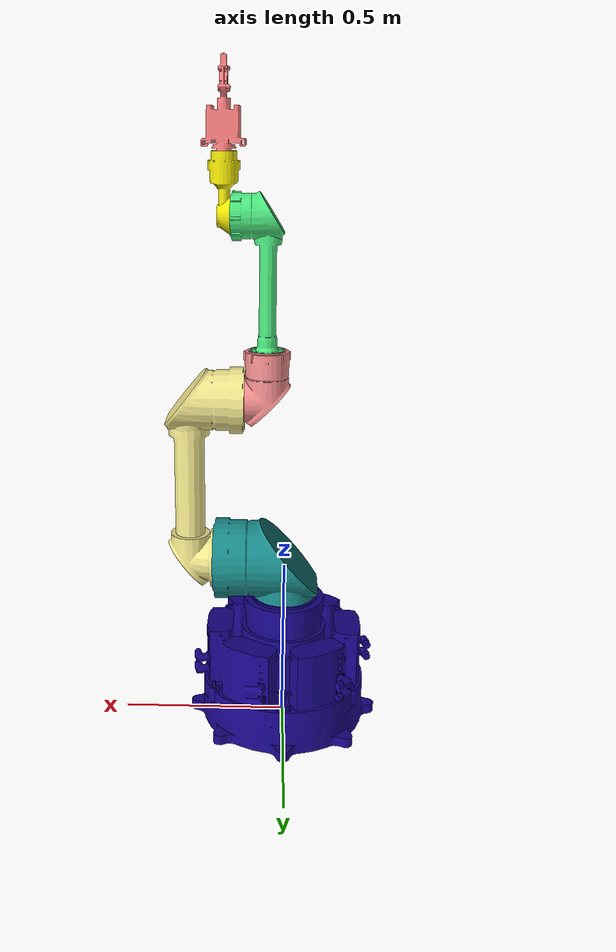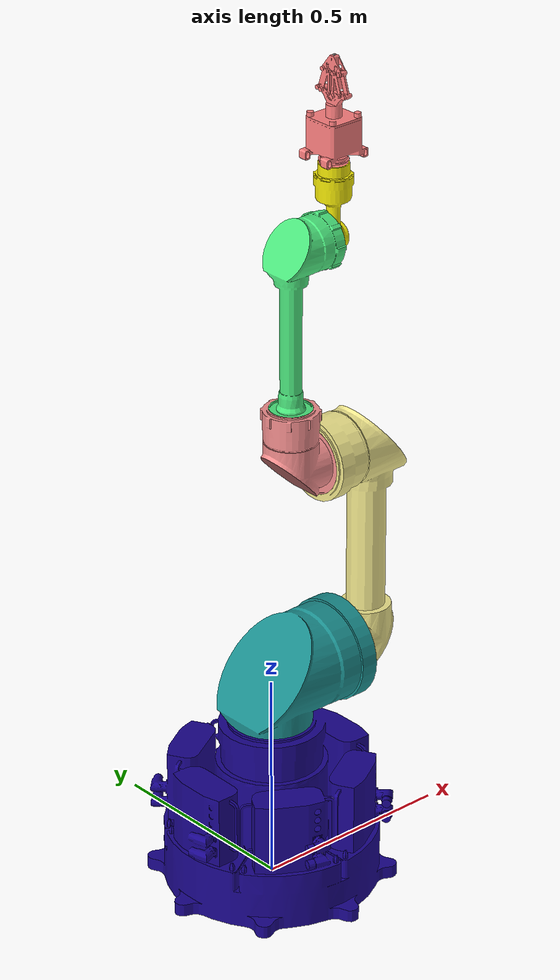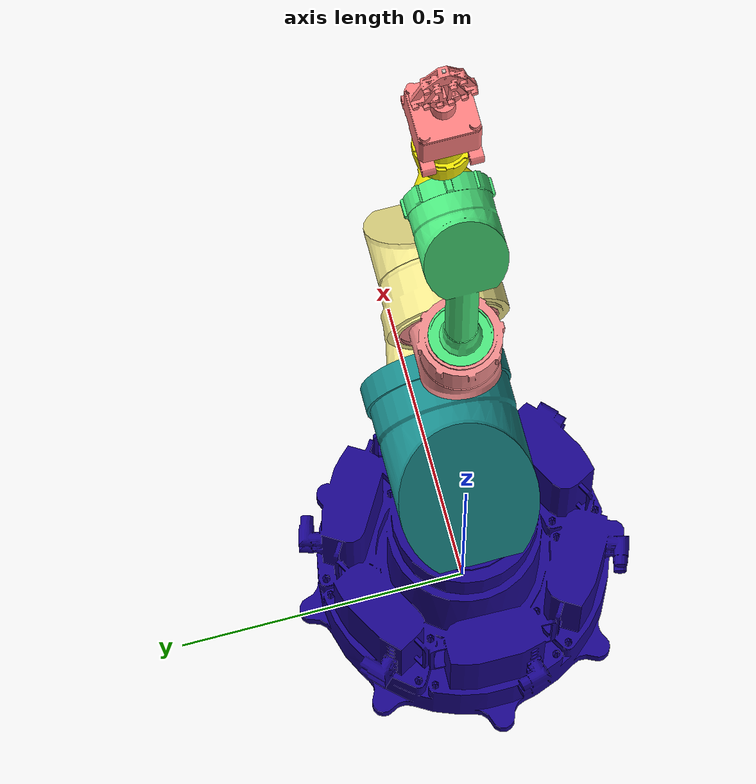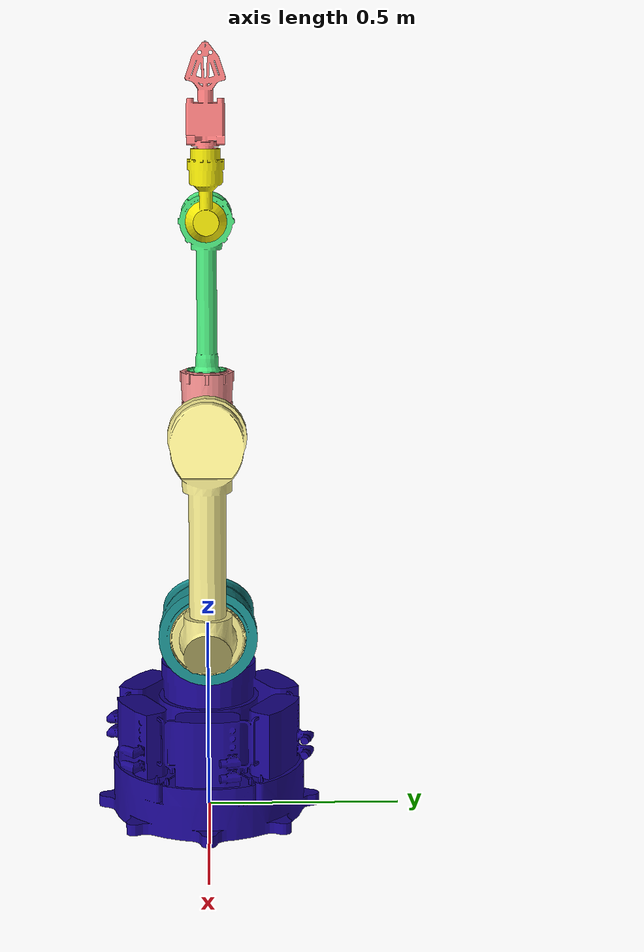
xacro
<?xml version="1.0"?>
<robot xmlns:xacro="http://ros.org/wiki/xacro" name="armin" >
  <!-- common stuff -->
  <xacro:include filename="$(find armin_description)/urdf/common.gazebo.xacro" />

  <!-- armor -->
  <xacro:include filename="$(find armin_description)/urdf/armin.urdf.xacro" />

  <!-- arm -->
  <xacro:armin_robot prefix="" joint_limited="true"
    a1_lower_limit="0.0" a1_upper_limit="0.2"
    a2_lower_limit="-2.33" a2_upper_limit="2.33"
    a3_lower_limit="${-pi}" a3_upper_limit="${pi}"
    a4_lower_limit="${-pi}" a4_upper_limit="${pi}"
    a5_lower_limit="${-pi}" a5_upper_limit="${pi}"
    a6_lower_limit="${-pi}" a6_upper_limit="${pi}"
  />

  <link name="world" />

  <joint name="world_joint" type="fixed">
    <parent link="world" />
    <child link = "base_link" />
    <origin xyz="0 0 0" rpy="3.14 0 0"/><axis><limit><lower>0</lower><upper>0</upper></limit><xyz>0 0 1</xyz></axis>
  </joint>

</robot>

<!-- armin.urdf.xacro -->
<robot xmlns:xacro="http://ros.org/wiki/xacro">
  <xacro:include filename="$(find armin_description)/urdf/armin.transmission.xacro" />
  <xacro:include filename="$(find armin_description)/urdf/armin.gazebo.xacro" />

<xacro:macro name="armin_robot" params="prefix joint_limited
    a1_lower_limit:=0.0 a1_upper_limit:=0.2
    a2_lower_limit:=${-pi} a2_upper_limit:=${pi}
    a3_lower_limit:=${-pi} a3_upper_limit:=${pi}
    a4_lower_limit:=${-pi} a4_upper_limit:=${pi}
    a5_lower_limit:=${-pi} a5_upper_limit:=${pi}
    a6_lower_limit:=${-pi} a6_upper_limit:=${pi}">

  <link
    name="base_link">
    <inertial>
      <origin
        xyz="-1.2225E-07 -5.7652E-08 -0.10536"
        rpy="0 0 0" />
      <mass
        value="179.35" />
      <inertia
        ixx="4.8557"
        ixy="1.9369E-08"
        ixz="-1.5161E-06"
        iyy="4.8557"
        iyz="-3.0711E-07"
        izz="6.5706" />
    </inertial>
    <visual>
      <origin
        xyz="0 0 0"
        rpy="0 0 0" />
      <geometry>
        <mesh
          filename="package://armin_description/meshes/base_link.stl" />
      </geometry>
      <material
        name="">
        <color
          rgba="0.1 0.02 0.54902 1" />
      </material>
    </visual>
    <collision>
      <origin
        xyz="0 0 0"
        rpy="0 0 0" />
      <geometry>
        <mesh
          filename="package://armin_description/meshes/base_link.stl" />
      </geometry>
    </collision>
  </link>
  <link
    name="a1_link">
    <inertial>
      <origin
        xyz="0.068866 -0.062357 -2.0514E-06"
        rpy="0 0 0" />
      <mass
        value="27.418" />
      <inertia
        ixx="0.36401"
        ixy="0.11229"
        ixz="1.615E-07"
        iyy="0.31929"
        iyz="7.9981E-07"
        izz="0.41728" />
    </inertial>
    <visual>
      <origin
        xyz="0 0 0"
        rpy="0 0 0" />
      <geometry>
        <mesh
          filename="package://armin_description/meshes/a1_link.stl" />
      </geometry>
      <material
        name="">
        <color
          rgba="0.1 0.54902 0.54902 1" />
      </material>
    </visual>
    <collision>
      <origin
        xyz="0 0 0"
        rpy="0 0 0" />
      <geometry>
        <mesh
          filename="package://armin_description/meshes/a1_link.stl" />
      </geometry>
    </collision>
  </link>
  <joint
    name="a1_joint"
    type="revolute">
    <origin
      xyz="0 0 -0.407"
      rpy="1.5708 0 0" />
    <parent
      link="base_link" />
    <child
      link="a1_link" />
    <axis
      xyz="0 1 0" />
    <limit
      lower="${-pi* 2.}"
      upper="${pi * 2.}"
      effort="101"
      velocity="1.01" />
    <dynamics
      damping="1E-05"
      friction="1E-05" />
  </joint>
  <link
    name="a2_link">
    <inertial>
      <origin
        xyz="0.0013396 0.23351 -3.7313E-06"
        rpy="0 0 0" />
      <mass
        value="24.15" />
      <inertia
        ixx="1.4097"
        ixy="-0.041018"
        ixz="5.0045E-07"
        iyy="0.14649"
        iyz="3.953E-05"
        izz="1.4177" />
    </inertial>
    <visual>
      <origin
        xyz="0 0 0"
        rpy="0 0 0" />
      <geometry>
        <mesh
          filename="package://armin_description/meshes/a2_link.stl" />
      </geometry>
      <material
        name="">
        <color
          rgba="0.941 0.902 0.54902 1" />
      </material>
    </visual>
    <collision>
      <origin
        xyz="0 0 0"
        rpy="0 0 0" />
      <geometry>
        <mesh
          filename="package://armin_description/meshes/a2_link.stl" />
      </geometry>
    </collision>
  </link>
  <joint
    name="a2_joint"
    type="revolute">
    <origin
      xyz="0.2175 -0.118 0"
      rpy="3.1416 0 0" />
    <parent
      link="a1_link" />
    <child
      link="a2_link" />
    <axis
      xyz="-1 0 0" />
    <limit
      lower="-2.33" upper="2.37"
      effort="102000"
      velocity="1.02" />
    <dynamics
      damping="2E-05"
      friction="2E-05" />
  </joint>
  <link
    name="a3_link">
    <inertial>
      <origin
        xyz="0.012915 -0.029952 1.129E-07"
        rpy="0 0 0" />
      <mass
        value="8.4355" />
      <inertia
        ixx="0.044109"
        ixy="0.013892"
        ixz="-2.9103E-08"
        iyy="0.041878"
        iyz="3.1132E-08"
        izz="0.054343" />
    </inertial>
    <visual>
      <origin
        xyz="0 0 0"
        rpy="0 0 0" />
      <geometry>
        <mesh
          filename="package://armin_description/meshes/a3_link.stl" />
      </geometry>
      <material
        name="">
        <color
          rgba="0.941 0.54902 0.54902 1" />
      </material>
    </visual>
    <collision>
      <origin
        xyz="0 0 0"
        rpy="0 0 0" />
      <geometry>
        <mesh
          filename="package://armin_description/meshes/a3_link.stl" />
      </geometry>
    </collision>
  </link>
  <joint
    name="a3_joint"
    type="revolute">
    <origin
      xyz="-0.0935 0.5 0"
      rpy="0 0 3.1416" />
    <parent
      link="a2_link" />
    <child
      link="a3_link" />
    <axis
      xyz="-1 0 0" />
    <limit
      lower="${-pi}"
      upper="${pi}"
      effort="103"
      velocity="1.03" />
    <dynamics
      damping="3E-05"
      friction="3E-05" />
  </joint>
  <link
    name="a4_link">
    <inertial>
      <origin
        xyz="0.020829 0.21628 -2.64E-07"
        rpy="0 0 0" />
      <mass
        value="6.8503" />
      <inertia
        ixx="0.23532"
        ixy="-0.023217"
        ixz="-3.4376E-09"
        iyy="0.016743"
        iyz="2.9764E-07"
        izz="0.23759" />
    </inertial>
    <visual>
      <origin
        xyz="0 0 0"
        rpy="0 0 0" />
      <geometry>
        <mesh
          filename="package://armin_description/meshes/a4_link.stl" />
      </geometry>
      <material
        name="">
        <color
          rgba="0.2941 0.902 0.4902 1" />
      </material>
    </visual>
    <collision>
      <origin
        xyz="0 0 0"
        rpy="0 0 0" />
      <geometry>
        <mesh
          filename="package://armin_description/meshes/a4_link.stl" />
      </geometry>
    </collision>
  </link>
  <joint
    name="a4_joint"
    type="revolute">
    <origin
      xyz="0.065001 -0.1505 0"
      rpy="0 0 3.1416" />
    <parent
      link="a3_link" />
    <child
      link="a4_link" />
    <axis
      xyz="0 -1 0" />
    <limit
      lower="${-pi}"
      upper="${pi}"
      effort="104"
      velocity="1.04" />
    <dynamics
      damping="4E-05"
      friction="4E-05" />
  </joint>
  <link
    name="a5_link">
    <inertial>
      <origin
        xyz="-0.0014946 0.045755 3.2674E-09"
        rpy="0 0 0" />
      <mass
        value="3.3504" />
      <inertia
        ixx="0.015695"
        ixy="-0.0029154"
        ixz="-2.4575E-10"
        iyy="0.0050036"
        iyz="3.0734E-11"
        izz="0.015644" />
    </inertial>
    <visual>
      <origin
        xyz="0 0 0"
        rpy="0 0 0" />
      <geometry>
        <mesh
          filename="package://armin_description/meshes/a5_link.stl" />
      </geometry>
      <material
        name="">
        <color
          rgba="0.941 0.902 0.02 1" />
      </material>
    </visual>
    <collision>
      <origin
        xyz="0 0 0"
        rpy="0 0 0" />
      <geometry>
        <mesh
          filename="package://armin_description/meshes/a5_link.stl" />
      </geometry>
    </collision>
  </link>
  <joint
    name="a5_joint"
    type="revolute">
    <origin
      xyz="0.1055 0.3765 0"
      rpy="0 0 0" />
    <parent
      link="a4_link" />
    <child
      link="a5_link" />
    <axis
      xyz="1 0 0" />
    <limit
      lower="${-pi}"
      upper="${pi}"
      effort="105"
      velocity="1.05" />
    <dynamics
      damping="5E-05"
      friction="5E-05" />
  </joint>
  <link
    name="a6_link">
    <inertial>
      <origin
        xyz="0.00025804 0.055668 -0.00019823"
        rpy="0 0 0" />
      <mass
        value="7.9656" />
      <inertia
        ixx="0.029026"
        ixy="1.4563E-06"
        ixz="-4.0755E-07"
        iyy="0.0090903"
        iyz="-4.9215E-05"
        izz="0.02904" />
    </inertial>
    <visual>
      <origin
        xyz="0 0 0"
        rpy="0 0 0" />
      <geometry>
        <mesh
          filename="package://armin_description/meshes/a6_link.stl" />
      </geometry>
      <material
        name="">
        <color
          rgba="1 0.50196 0.50196 1" />
      </material>
    </visual>
    <collision>
      <origin
        xyz="0 0 0"
        rpy="0 0 0" />
      <geometry>
        <mesh
          filename="package://armin_description/meshes/a6_link.stl" />
      </geometry>
    </collision>
  </link>
  <joint
    name="a6_joint"
    type="continuous">
    <origin
      xyz="0.0175 0.174 0"
      rpy="0 0 0" />
    <parent
      link="a5_link" />
    <child
      link="a6_link" />
    <axis
      xyz="0 -1 0" />
    <limit
      effort="106"
      velocity="1.06" />
    <dynamics
      damping="6E-05"
      friction="6E-05" />
  </joint>
  <link
    name="ee_link">

    <collision>
      <geometry>
        <box size="0.001 0.001 0.001"/>
      </geometry>
      <origin rpy="0 0 0" xyz="-0.01 0 0"/>
    </collision>
    <visual>
        <origin xyz="0 0 0" rpy="0 0 0" />
        <geometry>
          <box size="0.005 0.005 0.005"/>
        </geometry>
        <material name="">
          <color rgba="0.776470588235294 0.756862745098039 0.737254901960784 1" />
        </material>
     </visual>
  </link>
  <joint
    name="ee_fixed_joint"
    type="fixed">
    <origin
      xyz="0 0.24537 0"
      rpy="3.1416 0 0" />
    <parent
      link="a6_link" />
    <child
      link="ee_link" />
    <axis
      xyz="0 0 0" />
  </joint>

  <xacro:armin_arm_transmission prefix="${prefix}" />
  <xacro:armin_arm_gazebo prefix="${prefix}" />

  </xacro:macro>
</robot>
